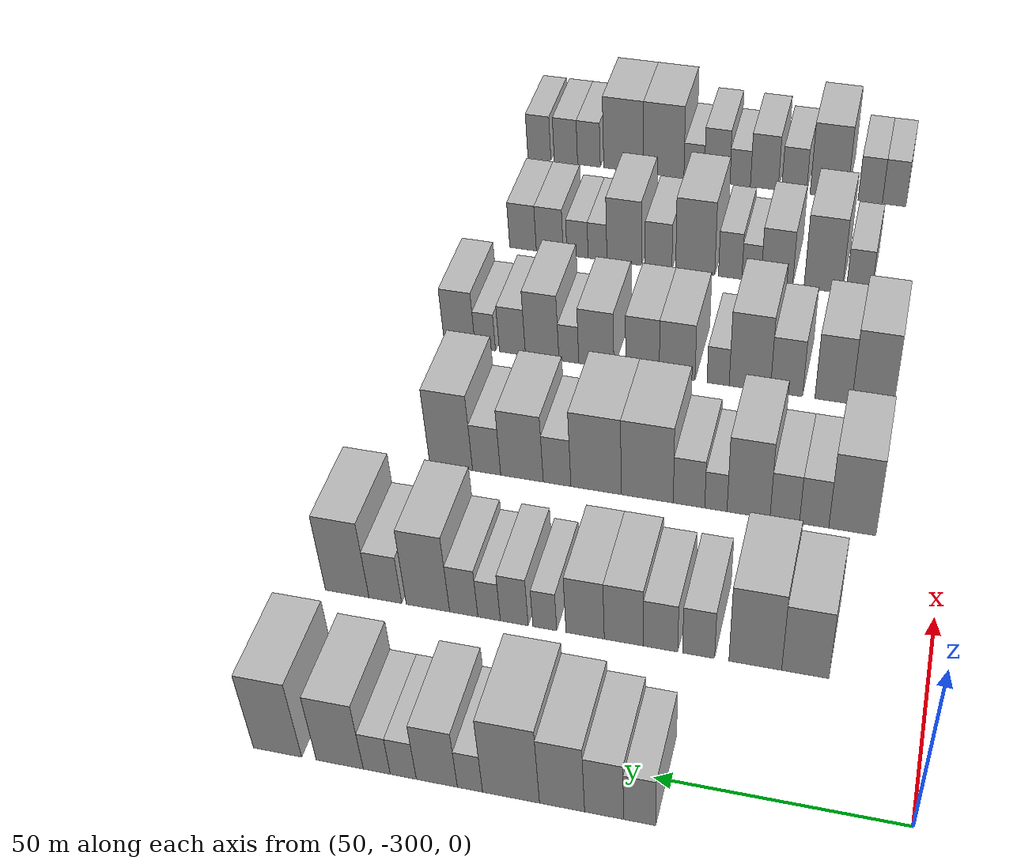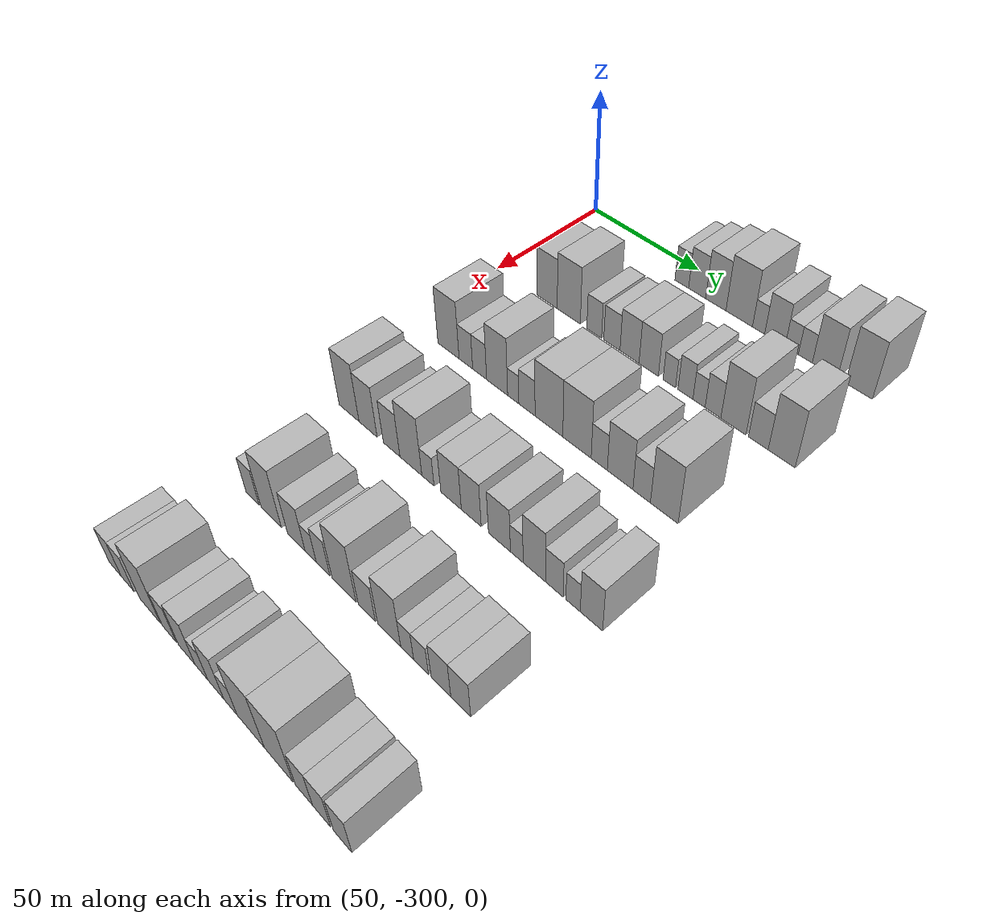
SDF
<sdf version="1.6">
 <world name="default">
  <model name="building_37">
   <static>1</static>
   <pose>50.0000 -249.3242 0 0.000000 0.000000 0.000000</pose>
   <link name="link">
    <pose>0 0 7.50 0 0 0</pose>
    <collision name="collision"><geometry><box><size>20.0000 6.2059 15.0000</size></box></geometry></collision>
    <visual name="visual">
     <cast_shadows>0</cast_shadows>
     <geometry><box><size>20.0000 6.2059 15.0000</size></box></geometry>
     <material>
      <script>
       <uri>model://HANNAS_wall/materials/scripts</uri>
       <uri>model://HANNAS_wall/materials/textures</uri>
       <name>vrc/HANNAS_wall</name>
      </script>
     </material>
    </visual>
   </link>
  </model>
  <model name="building_38">
   <static>1</static>
   <pose>50.0000 -242.4254 0 0.000000 0.000000 0.000000</pose>
   <link name="link">
    <pose>0 0 9.00 0 0 0</pose>
    <collision name="collision"><geometry><box><size>20.0000 7.5917 18.0000</size></box></geometry></collision>
    <visual name="visual">
     <cast_shadows>0</cast_shadows>
     <geometry><box><size>20.0000 7.5917 18.0000</size></box></geometry>
     <material>
      <script>
       <uri>model://HANNAS_wall/materials/scripts</uri>
       <uri>model://HANNAS_wall/materials/textures</uri>
       <name>vrc/HANNAS_wall</name>
      </script>
     </material>
    </visual>
   </link>
  </model>
  <model name="building_39">
   <static>1</static>
   <pose>50.0000 -234.2030 0 0.000000 0.000000 0.000000</pose>
   <link name="link">
    <pose>0 0 10.50 0 0 0</pose>
    <collision name="collision"><geometry><box><size>20.0000 8.8531 21.0000</size></box></geometry></collision>
    <visual name="visual">
     <cast_shadows>0</cast_shadows>
     <geometry><box><size>20.0000 8.8531 21.0000</size></box></geometry>
     <material>
      <script>
       <uri>model://HANNAS_wall/materials/scripts</uri>
       <uri>model://HANNAS_wall/materials/textures</uri>
       <name>vrc/HANNAS_wall</name>
      </script>
     </material>
    </visual>
   </link>
  </model>
  <model name="building_40">
   <static>1</static>
   <pose>50.0000 -224.1405 0 0.000000 0.000000 0.000000</pose>
   <link name="link">
    <pose>0 0 12.00 0 0 0</pose>
    <collision name="collision"><geometry><box><size>20.0000 11.2719 24.0000</size></box></geometry></collision>
    <visual name="visual">
     <cast_shadows>0</cast_shadows>
     <geometry><box><size>20.0000 11.2719 24.0000</size></box></geometry>
     <material>
      <script>
       <uri>model://HANNAS_wall/materials/scripts</uri>
       <uri>model://HANNAS_wall/materials/textures</uri>
       <name>vrc/HANNAS_wall</name>
      </script>
     </material>
    </visual>
   </link>
  </model>
  <model name="building_41">
   <static>1</static>
   <pose>50.0000 -215.9789 0 0.000000 0.000000 0.000000</pose>
   <link name="link">
    <pose>0 0 6.00 0 0 0</pose>
    <collision name="collision"><geometry><box><size>20.0000 5.0512 12.0000</size></box></geometry></collision>
    <visual name="visual">
     <cast_shadows>0</cast_shadows>
     <geometry><box><size>20.0000 5.0512 12.0000</size></box></geometry>
     <material>
      <script>
       <uri>model://HANNAS_wall/materials/scripts</uri>
       <uri>model://HANNAS_wall/materials/textures</uri>
       <name>vrc/HANNAS_wall</name>
      </script>
     </material>
    </visual>
   </link>
  </model>
  <model name="building_42">
   <static>1</static>
   <pose>50.0000 -209.3236 0 0.000000 0.000000 0.000000</pose>
   <link name="link">
    <pose>0 0 9.00 0 0 0</pose>
    <collision name="collision"><geometry><box><size>20.0000 8.2592 18.0000</size></box></geometry></collision>
    <visual name="visual">
     <cast_shadows>0</cast_shadows>
     <geometry><box><size>20.0000 8.2592 18.0000</size></box></geometry>
     <material>
      <script>
       <uri>model://HANNAS_wall/materials/scripts</uri>
       <uri>model://HANNAS_wall/materials/textures</uri>
       <name>vrc/HANNAS_wall</name>
      </script>
     </material>
    </visual>
   </link>
  </model>
  <model name="building_43">
   <static>1</static>
   <pose>50.0000 -202.5598 0 0.000000 0.000000 0.000000</pose>
   <link name="link">
    <pose>0 0 6.00 0 0 0</pose>
    <collision name="collision"><geometry><box><size>20.0000 5.2686 12.0000</size></box></geometry></collision>
    <visual name="visual">
     <cast_shadows>0</cast_shadows>
     <geometry><box><size>20.0000 5.2686 12.0000</size></box></geometry>
     <material>
      <script>
       <uri>model://HANNAS_wall/materials/scripts</uri>
       <uri>model://HANNAS_wall/materials/textures</uri>
       <name>vrc/HANNAS_wall</name>
      </script>
     </material>
    </visual>
   </link>
  </model>
  <model name="building_44">
   <static>1</static>
   <pose>50.0000 -197.1776 0 0.000000 0.000000 0.000000</pose>
   <link name="link">
    <pose>0 0 6.00 0 0 0</pose>
    <collision name="collision"><geometry><box><size>20.0000 5.4957 12.0000</size></box></geometry></collision>
    <visual name="visual">
     <cast_shadows>0</cast_shadows>
     <geometry><box><size>20.0000 5.4957 12.0000</size></box></geometry>
     <material>
      <script>
       <uri>model://HANNAS_wall/materials/scripts</uri>
       <uri>model://HANNAS_wall/materials/textures</uri>
       <name>vrc/HANNAS_wall</name>
      </script>
     </material>
    </visual>
   </link>
  </model>
  <model name="building_45">
   <static>1</static>
   <pose>50.0000 -189.6013 0 0.000000 0.000000 0.000000</pose>
   <link name="link">
    <pose>0 0 10.50 0 0 0</pose>
    <collision name="collision"><geometry><box><size>20.0000 9.6570 21.0000</size></box></geometry></collision>
    <visual name="visual">
     <cast_shadows>0</cast_shadows>
     <geometry><box><size>20.0000 9.6570 21.0000</size></box></geometry>
     <material>
      <script>
       <uri>model://HANNAS_wall/materials/scripts</uri>
       <uri>model://HANNAS_wall/materials/textures</uri>
       <name>vrc/HANNAS_wall</name>
      </script>
     </material>
    </visual>
   </link>
  </model>
  <model name="building_46">
   <static>1</static>
   <pose>50.0000 -176.7682 0 0.000000 0.000000 0.000000</pose>
   <link name="link">
    <pose>0 0 12.00 0 0 0</pose>
    <collision name="collision"><geometry><box><size>20.0000 10.0092 24.0000</size></box></geometry></collision>
    <visual name="visual">
     <cast_shadows>0</cast_shadows>
     <geometry><box><size>20.0000 10.0092 24.0000</size></box></geometry>
     <material>
      <script>
       <uri>model://HANNAS_wall/materials/scripts</uri>
       <uri>model://HANNAS_wall/materials/textures</uri>
       <name>vrc/HANNAS_wall</name>
      </script>
     </material>
    </visual>
   </link>
  </model>
  <model name="building_166">
   <static>1</static>
   <pose>90.0000 -275.2436 0 0.000000 0.000000 0.000000</pose>
   <link name="link">
    <pose>0 0 10.50 0 0 0</pose>
    <collision name="collision"><geometry><box><size>20.0000 9.7137 21.0000</size></box></geometry></collision>
    <visual name="visual">
     <cast_shadows>0</cast_shadows>
     <geometry><box><size>20.0000 9.7137 21.0000</size></box></geometry>
     <material>
      <script>
       <uri>model://HANNAS_wall/materials/scripts</uri>
       <uri>model://HANNAS_wall/materials/textures</uri>
       <name>vrc/HANNAS_wall</name>
      </script>
     </material>
    </visual>
   </link>
  </model>
  <model name="building_167">
   <static>1</static>
   <pose>90.0000 -264.9118 0 0.000000 0.000000 0.000000</pose>
   <link name="link">
    <pose>0 0 12.00 0 0 0</pose>
    <collision name="collision"><geometry><box><size>20.0000 10.9500 24.0000</size></box></geometry></collision>
    <visual name="visual">
     <cast_shadows>0</cast_shadows>
     <geometry><box><size>20.0000 10.9500 24.0000</size></box></geometry>
     <material>
      <script>
       <uri>model://HANNAS_wall/materials/scripts</uri>
       <uri>model://HANNAS_wall/materials/textures</uri>
       <name>vrc/HANNAS_wall</name>
      </script>
     </material>
    </visual>
   </link>
  </model>
  <model name="building_168">
   <static>1</static>
   <pose>90.0000 -253.0680 0 0.000000 0.000000 0.000000</pose>
   <link name="link">
    <pose>0 0 7.50 0 0 0</pose>
    <collision name="collision"><geometry><box><size>20.0000 6.7375 15.0000</size></box></geometry></collision>
    <visual name="visual">
     <cast_shadows>0</cast_shadows>
     <geometry><box><size>20.0000 6.7375 15.0000</size></box></geometry>
     <material>
      <script>
       <uri>model://HANNAS_wall/materials/scripts</uri>
       <uri>model://HANNAS_wall/materials/textures</uri>
       <name>vrc/HANNAS_wall</name>
      </script>
     </material>
    </visual>
   </link>
  </model>
  <model name="building_169">
   <static>1</static>
   <pose>90.0000 -245.0744 0 0.000000 0.000000 0.000000</pose>
   <link name="link">
    <pose>0 0 7.50 0 0 0</pose>
    <collision name="collision"><geometry><box><size>20.0000 7.2498 15.0000</size></box></geometry></collision>
    <visual name="visual">
     <cast_shadows>0</cast_shadows>
     <geometry><box><size>20.0000 7.2498 15.0000</size></box></geometry>
     <material>
      <script>
       <uri>model://HANNAS_wall/materials/scripts</uri>
       <uri>model://HANNAS_wall/materials/textures</uri>
       <name>vrc/HANNAS_wall</name>
      </script>
     </material>
    </visual>
   </link>
  </model>
  <model name="building_170">
   <static>1</static>
   <pose>90.0000 -237.2805 0 0.000000 0.000000 0.000000</pose>
   <link name="link">
    <pose>0 0 9.00 0 0 0</pose>
    <collision name="collision"><geometry><box><size>20.0000 8.3379 18.0000</size></box></geometry></collision>
    <visual name="visual">
     <cast_shadows>0</cast_shadows>
     <geometry><box><size>20.0000 8.3379 18.0000</size></box></geometry>
     <material>
      <script>
       <uri>model://HANNAS_wall/materials/scripts</uri>
       <uri>model://HANNAS_wall/materials/textures</uri>
       <name>vrc/HANNAS_wall</name>
      </script>
     </material>
    </visual>
   </link>
  </model>
  <model name="building_171">
   <static>1</static>
   <pose>90.0000 -228.9978 0 0.000000 0.000000 0.000000</pose>
   <link name="link">
    <pose>0 0 9.00 0 0 0</pose>
    <collision name="collision"><geometry><box><size>20.0000 8.2273 18.0000</size></box></geometry></collision>
    <visual name="visual">
     <cast_shadows>0</cast_shadows>
     <geometry><box><size>20.0000 8.2273 18.0000</size></box></geometry>
     <material>
      <script>
       <uri>model://HANNAS_wall/materials/scripts</uri>
       <uri>model://HANNAS_wall/materials/textures</uri>
       <name>vrc/HANNAS_wall</name>
      </script>
     </material>
    </visual>
   </link>
  </model>
  <model name="building_172">
   <static>1</static>
   <pose>90.0000 -220.3013 0 0.000000 0.000000 0.000000</pose>
   <link name="link">
    <pose>0 0 6.00 0 0 0</pose>
    <collision name="collision"><geometry><box><size>20.0000 5.1658 12.0000</size></box></geometry></collision>
    <visual name="visual">
     <cast_shadows>0</cast_shadows>
     <geometry><box><size>20.0000 5.1658 12.0000</size></box></geometry>
     <material>
      <script>
       <uri>model://HANNAS_wall/materials/scripts</uri>
       <uri>model://HANNAS_wall/materials/textures</uri>
       <name>vrc/HANNAS_wall</name>
      </script>
     </material>
    </visual>
   </link>
  </model>
  <model name="building_173">
   <static>1</static>
   <pose>90.0000 -213.6722 0 0.000000 0.000000 0.000000</pose>
   <link name="link">
    <pose>0 0 7.50 0 0 0</pose>
    <collision name="collision"><geometry><box><size>20.0000 6.0923 15.0000</size></box></geometry></collision>
    <visual name="visual">
     <cast_shadows>0</cast_shadows>
     <geometry><box><size>20.0000 6.0923 15.0000</size></box></geometry>
     <material>
      <script>
       <uri>model://HANNAS_wall/materials/scripts</uri>
       <uri>model://HANNAS_wall/materials/textures</uri>
       <name>vrc/HANNAS_wall</name>
      </script>
     </material>
    </visual>
   </link>
  </model>
  <model name="building_174">
   <static>1</static>
   <pose>90.0000 -208.1745 0 0.000000 0.000000 0.000000</pose>
   <link name="link">
    <pose>0 0 6.00 0 0 0</pose>
    <collision name="collision"><geometry><box><size>20.0000 4.9032 12.0000</size></box></geometry></collision>
    <visual name="visual">
     <cast_shadows>0</cast_shadows>
     <geometry><box><size>20.0000 4.9032 12.0000</size></box></geometry>
     <material>
      <script>
       <uri>model://HANNAS_wall/materials/scripts</uri>
       <uri>model://HANNAS_wall/materials/textures</uri>
       <name>vrc/HANNAS_wall</name>
      </script>
     </material>
    </visual>
   </link>
  </model>
  <model name="building_175">
   <static>1</static>
   <pose>90.0000 -202.6202 0 0.000000 0.000000 0.000000</pose>
   <link name="link">
    <pose>0 0 7.50 0 0 0</pose>
    <collision name="collision"><geometry><box><size>20.0000 6.2054 15.0000</size></box></geometry></collision>
    <visual name="visual">
     <cast_shadows>0</cast_shadows>
     <geometry><box><size>20.0000 6.2054 15.0000</size></box></geometry>
     <material>
      <script>
       <uri>model://HANNAS_wall/materials/scripts</uri>
       <uri>model://HANNAS_wall/materials/textures</uri>
       <name>vrc/HANNAS_wall</name>
      </script>
     </material>
    </visual>
   </link>
  </model>
  <model name="building_176">
   <static>1</static>
   <pose>90.0000 -194.6989 0 0.000000 0.000000 0.000000</pose>
   <link name="link">
    <pose>0 0 12.00 0 0 0</pose>
    <collision name="collision"><geometry><box><size>20.0000 9.6372 24.0000</size></box></geometry></collision>
    <visual name="visual">
     <cast_shadows>0</cast_shadows>
     <geometry><box><size>20.0000 9.6372 24.0000</size></box></geometry>
     <material>
      <script>
       <uri>model://HANNAS_wall/materials/scripts</uri>
       <uri>model://HANNAS_wall/materials/textures</uri>
       <name>vrc/HANNAS_wall</name>
      </script>
     </material>
    </visual>
   </link>
  </model>
  <model name="building_177">
   <static>1</static>
   <pose>90.0000 -185.2163 0 0.000000 0.000000 0.000000</pose>
   <link name="link">
    <pose>0 0 7.50 0 0 0</pose>
    <collision name="collision"><geometry><box><size>20.0000 7.3279 15.0000</size></box></geometry></collision>
    <visual name="visual">
     <cast_shadows>0</cast_shadows>
     <geometry><box><size>20.0000 7.3279 15.0000</size></box></geometry>
     <material>
      <script>
       <uri>model://HANNAS_wall/materials/scripts</uri>
       <uri>model://HANNAS_wall/materials/textures</uri>
       <name>vrc/HANNAS_wall</name>
      </script>
     </material>
    </visual>
   </link>
  </model>
  <model name="building_178">
   <static>1</static>
   <pose>90.0000 -176.6533 0 0.000000 0.000000 0.000000</pose>
   <link name="link">
    <pose>0 0 12.00 0 0 0</pose>
    <collision name="collision"><geometry><box><size>20.0000 9.7980 24.0000</size></box></geometry></collision>
    <visual name="visual">
     <cast_shadows>0</cast_shadows>
     <geometry><box><size>20.0000 9.7980 24.0000</size></box></geometry>
     <material>
      <script>
       <uri>model://HANNAS_wall/materials/scripts</uri>
       <uri>model://HANNAS_wall/materials/textures</uri>
       <name>vrc/HANNAS_wall</name>
      </script>
     </material>
    </visual>
   </link>
  </model>
  <model name="building_297">
   <static>1</static>
   <pose>130.0000 -280.2208 0 0.000000 0.000000 0.000000</pose>
   <link name="link">
    <pose>0 0 12.00 0 0 0</pose>
    <collision name="collision"><geometry><box><size>20.0000 10.4917 24.0000</size></box></geometry></collision>
    <visual name="visual">
     <cast_shadows>0</cast_shadows>
     <geometry><box><size>20.0000 10.4917 24.0000</size></box></geometry>
     <material>
      <script>
       <uri>model://HANNAS_wall/materials/scripts</uri>
       <uri>model://HANNAS_wall/materials/textures</uri>
       <name>vrc/HANNAS_wall</name>
      </script>
     </material>
    </visual>
   </link>
  </model>
  <model name="building_298">
   <static>1</static>
   <pose>130.0000 -271.6885 0 0.000000 0.000000 0.000000</pose>
   <link name="link">
    <pose>0 0 7.50 0 0 0</pose>
    <collision name="collision"><geometry><box><size>20.0000 6.5730 15.0000</size></box></geometry></collision>
    <visual name="visual">
     <cast_shadows>0</cast_shadows>
     <geometry><box><size>20.0000 6.5730 15.0000</size></box></geometry>
     <material>
      <script>
       <uri>model://HANNAS_wall/materials/scripts</uri>
       <uri>model://HANNAS_wall/materials/textures</uri>
       <name>vrc/HANNAS_wall</name>
      </script>
     </material>
    </visual>
   </link>
  </model>
  <model name="building_299">
   <static>1</static>
   <pose>130.0000 -265.0830 0 0.000000 0.000000 0.000000</pose>
   <link name="link">
    <pose>0 0 7.50 0 0 0</pose>
    <collision name="collision"><geometry><box><size>20.0000 6.6380 15.0000</size></box></geometry></collision>
    <visual name="visual">
     <cast_shadows>0</cast_shadows>
     <geometry><box><size>20.0000 6.6380 15.0000</size></box></geometry>
     <material>
      <script>
       <uri>model://HANNAS_wall/materials/scripts</uri>
       <uri>model://HANNAS_wall/materials/textures</uri>
       <name>vrc/HANNAS_wall</name>
      </script>
     </material>
    </visual>
   </link>
  </model>
  <model name="building_300">
   <static>1</static>
   <pose>130.0000 -256.8879 0 0.000000 0.000000 0.000000</pose>
   <link name="link">
    <pose>0 0 12.00 0 0 0</pose>
    <collision name="collision"><geometry><box><size>20.0000 9.7523 24.0000</size></box></geometry></collision>
    <visual name="visual">
     <cast_shadows>0</cast_shadows>
     <geometry><box><size>20.0000 9.7523 24.0000</size></box></geometry>
     <material>
      <script>
       <uri>model://HANNAS_wall/materials/scripts</uri>
       <uri>model://HANNAS_wall/materials/textures</uri>
       <name>vrc/HANNAS_wall</name>
      </script>
     </material>
    </visual>
   </link>
  </model>
  <model name="building_301">
   <static>1</static>
   <pose>130.0000 -249.4728 0 0.000000 0.000000 0.000000</pose>
   <link name="link">
    <pose>0 0 6.00 0 0 0</pose>
    <collision name="collision"><geometry><box><size>20.0000 5.0778 12.0000</size></box></geometry></collision>
    <visual name="visual">
     <cast_shadows>0</cast_shadows>
     <geometry><box><size>20.0000 5.0778 12.0000</size></box></geometry>
     <material>
      <script>
       <uri>model://HANNAS_wall/materials/scripts</uri>
       <uri>model://HANNAS_wall/materials/textures</uri>
       <name>vrc/HANNAS_wall</name>
      </script>
     </material>
    </visual>
   </link>
  </model>
  <model name="building_302">
   <static>1</static>
   <pose>130.0000 -243.3318 0 0.000000 0.000000 0.000000</pose>
   <link name="link">
    <pose>0 0 7.50 0 0 0</pose>
    <collision name="collision"><geometry><box><size>20.0000 7.2042 15.0000</size></box></geometry></collision>
    <visual name="visual">
     <cast_shadows>0</cast_shadows>
     <geometry><box><size>20.0000 7.2042 15.0000</size></box></geometry>
     <material>
      <script>
       <uri>model://HANNAS_wall/materials/scripts</uri>
       <uri>model://HANNAS_wall/materials/textures</uri>
       <name>vrc/HANNAS_wall</name>
      </script>
     </material>
    </visual>
   </link>
  </model>
  <model name="building_303">
   <static>1</static>
   <pose>130.0000 -233.7345 0 0.000000 0.000000 0.000000</pose>
   <link name="link">
    <pose>0 0 12.00 0 0 0</pose>
    <collision name="collision"><geometry><box><size>20.0000 11.9905 24.0000</size></box></geometry></collision>
    <visual name="visual">
     <cast_shadows>0</cast_shadows>
     <geometry><box><size>20.0000 11.9905 24.0000</size></box></geometry>
     <material>
      <script>
       <uri>model://HANNAS_wall/materials/scripts</uri>
       <uri>model://HANNAS_wall/materials/textures</uri>
       <name>vrc/HANNAS_wall</name>
      </script>
     </material>
    </visual>
   </link>
  </model>
  <model name="building_304">
   <static>1</static>
   <pose>130.0000 -221.8408 0 0.000000 0.000000 0.000000</pose>
   <link name="link">
    <pose>0 0 12.00 0 0 0</pose>
    <collision name="collision"><geometry><box><size>20.0000 11.7968 24.0000</size></box></geometry></collision>
    <visual name="visual">
     <cast_shadows>0</cast_shadows>
     <geometry><box><size>20.0000 11.7968 24.0000</size></box></geometry>
     <material>
      <script>
       <uri>model://HANNAS_wall/materials/scripts</uri>
       <uri>model://HANNAS_wall/materials/textures</uri>
       <name>vrc/HANNAS_wall</name>
      </script>
     </material>
    </visual>
   </link>
  </model>
  <model name="building_305">
   <static>1</static>
   <pose>130.0000 -212.6809 0 0.000000 0.000000 0.000000</pose>
   <link name="link">
    <pose>0 0 7.50 0 0 0</pose>
    <collision name="collision"><geometry><box><size>20.0000 6.5230 15.0000</size></box></geometry></collision>
    <visual name="visual">
     <cast_shadows>0</cast_shadows>
     <geometry><box><size>20.0000 6.5230 15.0000</size></box></geometry>
     <material>
      <script>
       <uri>model://HANNAS_wall/materials/scripts</uri>
       <uri>model://HANNAS_wall/materials/textures</uri>
       <name>vrc/HANNAS_wall</name>
      </script>
     </material>
    </visual>
   </link>
  </model>
  <model name="building_306">
   <static>1</static>
   <pose>130.0000 -204.3752 0 0.000000 0.000000 0.000000</pose>
   <link name="link">
    <pose>0 0 10.50 0 0 0</pose>
    <collision name="collision"><geometry><box><size>20.0000 10.0885 21.0000</size></box></geometry></collision>
    <visual name="visual">
     <cast_shadows>0</cast_shadows>
     <geometry><box><size>20.0000 10.0885 21.0000</size></box></geometry>
     <material>
      <script>
       <uri>model://HANNAS_wall/materials/scripts</uri>
       <uri>model://HANNAS_wall/materials/textures</uri>
       <name>vrc/HANNAS_wall</name>
      </script>
     </material>
    </visual>
   </link>
  </model>
  <model name="building_307">
   <static>1</static>
   <pose>130.0000 -195.9762 0 0.000000 0.000000 0.000000</pose>
   <link name="link">
    <pose>0 0 7.50 0 0 0</pose>
    <collision name="collision"><geometry><box><size>20.0000 6.7095 15.0000</size></box></geometry></collision>
    <visual name="visual">
     <cast_shadows>0</cast_shadows>
     <geometry><box><size>20.0000 6.7095 15.0000</size></box></geometry>
     <material>
      <script>
       <uri>model://HANNAS_wall/materials/scripts</uri>
       <uri>model://HANNAS_wall/materials/textures</uri>
       <name>vrc/HANNAS_wall</name>
      </script>
     </material>
    </visual>
   </link>
  </model>
  <model name="building_308">
   <static>1</static>
   <pose>130.0000 -187.4628 0 0.000000 0.000000 0.000000</pose>
   <link name="link">
    <pose>0 0 12.00 0 0 0</pose>
    <collision name="collision"><geometry><box><size>20.0000 10.3174 24.0000</size></box></geometry></collision>
    <visual name="visual">
     <cast_shadows>0</cast_shadows>
     <geometry><box><size>20.0000 10.3174 24.0000</size></box></geometry>
     <material>
      <script>
       <uri>model://HANNAS_wall/materials/scripts</uri>
       <uri>model://HANNAS_wall/materials/textures</uri>
       <name>vrc/HANNAS_wall</name>
      </script>
     </material>
    </visual>
   </link>
  </model>
  <model name="building_435">
   <static>1</static>
   <pose>170.0000 -280.3802 0 0.000000 0.000000 0.000000</pose>
   <link name="link">
    <pose>0 0 12.00 0 0 0</pose>
    <collision name="collision"><geometry><box><size>20.0000 9.9731 24.0000</size></box></geometry></collision>
    <visual name="visual">
     <cast_shadows>0</cast_shadows>
     <geometry><box><size>20.0000 9.9731 24.0000</size></box></geometry>
     <material>
      <script>
       <uri>model://HANNAS_wall/materials/scripts</uri>
       <uri>model://HANNAS_wall/materials/textures</uri>
       <name>vrc/HANNAS_wall</name>
      </script>
     </material>
    </visual>
   </link>
  </model>
  <model name="building_436">
   <static>1</static>
   <pose>170.0000 -270.9583 0 0.000000 0.000000 0.000000</pose>
   <link name="link">
    <pose>0 0 10.50 0 0 0</pose>
    <collision name="collision"><geometry><box><size>20.0000 8.8707 21.0000</size></box></geometry></collision>
    <visual name="visual">
     <cast_shadows>0</cast_shadows>
     <geometry><box><size>20.0000 8.8707 21.0000</size></box></geometry>
     <material>
      <script>
       <uri>model://HANNAS_wall/materials/scripts</uri>
       <uri>model://HANNAS_wall/materials/textures</uri>
       <name>vrc/HANNAS_wall</name>
      </script>
     </material>
    </visual>
   </link>
  </model>
  <model name="building_437">
   <static>1</static>
   <pose>170.0000 -259.5938 0 0.000000 0.000000 0.000000</pose>
   <link name="link">
    <pose>0 0 9.00 0 0 0</pose>
    <collision name="collision"><geometry><box><size>20.0000 7.8583 18.0000</size></box></geometry></collision>
    <visual name="visual">
     <cast_shadows>0</cast_shadows>
     <geometry><box><size>20.0000 7.8583 18.0000</size></box></geometry>
     <material>
      <script>
       <uri>model://HANNAS_wall/materials/scripts</uri>
       <uri>model://HANNAS_wall/materials/textures</uri>
       <name>vrc/HANNAS_wall</name>
      </script>
     </material>
    </visual>
   </link>
  </model>
  <model name="building_438">
   <static>1</static>
   <pose>170.0000 -250.6094 0 0.000000 0.000000 0.000000</pose>
   <link name="link">
    <pose>0 0 12.00 0 0 0</pose>
    <collision name="collision"><geometry><box><size>20.0000 10.1106 24.0000</size></box></geometry></collision>
    <visual name="visual">
     <cast_shadows>0</cast_shadows>
     <geometry><box><size>20.0000 10.1106 24.0000</size></box></geometry>
     <material>
      <script>
       <uri>model://HANNAS_wall/materials/scripts</uri>
       <uri>model://HANNAS_wall/materials/textures</uri>
       <name>vrc/HANNAS_wall</name>
      </script>
     </material>
    </visual>
   </link>
  </model>
  <model name="building_439">
   <static>1</static>
   <pose>170.0000 -242.8257 0 0.000000 0.000000 0.000000</pose>
   <link name="link">
    <pose>0 0 6.00 0 0 0</pose>
    <collision name="collision"><geometry><box><size>20.0000 5.4569 12.0000</size></box></geometry></collision>
    <visual name="visual">
     <cast_shadows>0</cast_shadows>
     <geometry><box><size>20.0000 5.4569 12.0000</size></box></geometry>
     <material>
      <script>
       <uri>model://HANNAS_wall/materials/scripts</uri>
       <uri>model://HANNAS_wall/materials/textures</uri>
       <name>vrc/HANNAS_wall</name>
      </script>
     </material>
    </visual>
   </link>
  </model>
  <model name="building_440">
   <static>1</static>
   <pose>170.0000 -232.6529 0 0.000000 0.000000 0.000000</pose>
   <link name="link">
    <pose>0 0 9.00 0 0 0</pose>
    <collision name="collision"><geometry><box><size>20.0000 8.8888 18.0000</size></box></geometry></collision>
    <visual name="visual">
     <cast_shadows>0</cast_shadows>
     <geometry><box><size>20.0000 8.8888 18.0000</size></box></geometry>
     <material>
      <script>
       <uri>model://HANNAS_wall/materials/scripts</uri>
       <uri>model://HANNAS_wall/materials/textures</uri>
       <name>vrc/HANNAS_wall</name>
      </script>
     </material>
    </visual>
   </link>
  </model>
  <model name="building_441">
   <static>1</static>
   <pose>170.0000 -224.0159 0 0.000000 0.000000 0.000000</pose>
   <link name="link">
    <pose>0 0 9.00 0 0 0</pose>
    <collision name="collision"><geometry><box><size>20.0000 8.3853 18.0000</size></box></geometry></collision>
    <visual name="visual">
     <cast_shadows>0</cast_shadows>
     <geometry><box><size>20.0000 8.3853 18.0000</size></box></geometry>
     <material>
      <script>
       <uri>model://HANNAS_wall/materials/scripts</uri>
       <uri>model://HANNAS_wall/materials/textures</uri>
       <name>vrc/HANNAS_wall</name>
      </script>
     </material>
    </visual>
   </link>
  </model>
  <model name="building_442">
   <static>1</static>
   <pose>170.0000 -212.3768 0 0.000000 0.000000 0.000000</pose>
   <link name="link">
    <pose>0 0 9.00 0 0 0</pose>
    <collision name="collision"><geometry><box><size>20.0000 8.8929 18.0000</size></box></geometry></collision>
    <visual name="visual">
     <cast_shadows>0</cast_shadows>
     <geometry><box><size>20.0000 8.8929 18.0000</size></box></geometry>
     <material>
      <script>
       <uri>model://HANNAS_wall/materials/scripts</uri>
       <uri>model://HANNAS_wall/materials/textures</uri>
       <name>vrc/HANNAS_wall</name>
      </script>
     </material>
    </visual>
   </link>
  </model>
  <model name="building_443">
   <static>1</static>
   <pose>170.0000 -205.4015 0 0.000000 0.000000 0.000000</pose>
   <link name="link">
    <pose>0 0 6.00 0 0 0</pose>
    <collision name="collision"><geometry><box><size>20.0000 5.0578 12.0000</size></box></geometry></collision>
    <visual name="visual">
     <cast_shadows>0</cast_shadows>
     <geometry><box><size>20.0000 5.0578 12.0000</size></box></geometry>
     <material>
      <script>
       <uri>model://HANNAS_wall/materials/scripts</uri>
       <uri>model://HANNAS_wall/materials/textures</uri>
       <name>vrc/HANNAS_wall</name>
      </script>
     </material>
    </visual>
   </link>
  </model>
  <model name="building_444">
   <static>1</static>
   <pose>170.0000 -198.5896 0 0.000000 0.000000 0.000000</pose>
   <link name="link">
    <pose>0 0 10.50 0 0 0</pose>
    <collision name="collision"><geometry><box><size>20.0000 8.5660 21.0000</size></box></geometry></collision>
    <visual name="visual">
     <cast_shadows>0</cast_shadows>
     <geometry><box><size>20.0000 8.5660 21.0000</size></box></geometry>
     <material>
      <script>
       <uri>model://HANNAS_wall/materials/scripts</uri>
       <uri>model://HANNAS_wall/materials/textures</uri>
       <name>vrc/HANNAS_wall</name>
      </script>
     </material>
    </visual>
   </link>
  </model>
  <model name="building_445">
   <static>1</static>
   <pose>170.0000 -190.9585 0 0.000000 0.000000 0.000000</pose>
   <link name="link">
    <pose>0 0 7.50 0 0 0</pose>
    <collision name="collision"><geometry><box><size>20.0000 6.6962 15.0000</size></box></geometry></collision>
    <visual name="visual">
     <cast_shadows>0</cast_shadows>
     <geometry><box><size>20.0000 6.6962 15.0000</size></box></geometry>
     <material>
      <script>
       <uri>model://HANNAS_wall/materials/scripts</uri>
       <uri>model://HANNAS_wall/materials/textures</uri>
       <name>vrc/HANNAS_wall</name>
      </script>
     </material>
    </visual>
   </link>
  </model>
  <model name="building_446">
   <static>1</static>
   <pose>170.0000 -183.9829 0 0.000000 0.000000 0.000000</pose>
   <link name="link">
    <pose>0 0 6.00 0 0 0</pose>
    <collision name="collision"><geometry><box><size>20.0000 5.2549 12.0000</size></box></geometry></collision>
    <visual name="visual">
     <cast_shadows>0</cast_shadows>
     <geometry><box><size>20.0000 5.2549 12.0000</size></box></geometry>
     <material>
      <script>
       <uri>model://HANNAS_wall/materials/scripts</uri>
       <uri>model://HANNAS_wall/materials/textures</uri>
       <name>vrc/HANNAS_wall</name>
      </script>
     </material>
    </visual>
   </link>
  </model>
  <model name="building_447">
   <static>1</static>
   <pose>170.0000 -177.3479 0 0.000000 0.000000 0.000000</pose>
   <link name="link">
    <pose>0 0 9.00 0 0 0</pose>
    <collision name="collision"><geometry><box><size>20.0000 8.0151 18.0000</size></box></geometry></collision>
    <visual name="visual">
     <cast_shadows>0</cast_shadows>
     <geometry><box><size>20.0000 8.0151 18.0000</size></box></geometry>
     <material>
      <script>
       <uri>model://HANNAS_wall/materials/scripts</uri>
       <uri>model://HANNAS_wall/materials/textures</uri>
       <name>vrc/HANNAS_wall</name>
      </script>
     </material>
    </visual>
   </link>
  </model>
  <model name="building_576">
   <static>1</static>
   <pose>210.0000 -272.5197 0 0.000000 0.000000 0.000000</pose>
   <link name="link">
    <pose>0 0 7.50 0 0 0</pose>
    <collision name="collision"><geometry><box><size>20.0000 6.5834 15.0000</size></box></geometry></collision>
    <visual name="visual">
     <cast_shadows>0</cast_shadows>
     <geometry><box><size>20.0000 6.5834 15.0000</size></box></geometry>
     <material>
      <script>
       <uri>model://HANNAS_wall/materials/scripts</uri>
       <uri>model://HANNAS_wall/materials/textures</uri>
       <name>vrc/HANNAS_wall</name>
      </script>
     </material>
    </visual>
   </link>
  </model>
  <model name="building_577">
   <static>1</static>
   <pose>210.0000 -263.2683 0 0.000000 0.000000 0.000000</pose>
   <link name="link">
    <pose>0 0 12.00 0 0 0</pose>
    <collision name="collision"><geometry><box><size>20.0000 9.9195 24.0000</size></box></geometry></collision>
    <visual name="visual">
     <cast_shadows>0</cast_shadows>
     <geometry><box><size>20.0000 9.9195 24.0000</size></box></geometry>
     <material>
      <script>
       <uri>model://HANNAS_wall/materials/scripts</uri>
       <uri>model://HANNAS_wall/materials/textures</uri>
       <name>vrc/HANNAS_wall</name>
      </script>
     </material>
    </visual>
   </link>
  </model>
  <model name="building_578">
   <static>1</static>
   <pose>210.0000 -251.1657 0 0.000000 0.000000 0.000000</pose>
   <link name="link">
    <pose>0 0 9.00 0 0 0</pose>
    <collision name="collision"><geometry><box><size>20.0000 8.2857 18.0000</size></box></geometry></collision>
    <visual name="visual">
     <cast_shadows>0</cast_shadows>
     <geometry><box><size>20.0000 8.2857 18.0000</size></box></geometry>
     <material>
      <script>
       <uri>model://HANNAS_wall/materials/scripts</uri>
       <uri>model://HANNAS_wall/materials/textures</uri>
       <name>vrc/HANNAS_wall</name>
      </script>
     </material>
    </visual>
   </link>
  </model>
  <model name="building_579">
   <static>1</static>
   <pose>210.0000 -244.4851 0 0.000000 0.000000 0.000000</pose>
   <link name="link">
    <pose>0 0 6.00 0 0 0</pose>
    <collision name="collision"><geometry><box><size>20.0000 5.0756 12.0000</size></box></geometry></collision>
    <visual name="visual">
     <cast_shadows>0</cast_shadows>
     <geometry><box><size>20.0000 5.0756 12.0000</size></box></geometry>
     <material>
      <script>
       <uri>model://HANNAS_wall/materials/scripts</uri>
       <uri>model://HANNAS_wall/materials/textures</uri>
       <name>vrc/HANNAS_wall</name>
      </script>
     </material>
    </visual>
   </link>
  </model>
  <model name="building_580">
   <static>1</static>
   <pose>210.0000 -238.8440 0 0.000000 0.000000 0.000000</pose>
   <link name="link">
    <pose>0 0 7.50 0 0 0</pose>
    <collision name="collision"><geometry><box><size>20.0000 6.2065 15.0000</size></box></geometry></collision>
    <visual name="visual">
     <cast_shadows>0</cast_shadows>
     <geometry><box><size>20.0000 6.2065 15.0000</size></box></geometry>
     <material>
      <script>
       <uri>model://HANNAS_wall/materials/scripts</uri>
       <uri>model://HANNAS_wall/materials/textures</uri>
       <name>vrc/HANNAS_wall</name>
      </script>
     </material>
    </visual>
   </link>
  </model>
  <model name="building_581">
   <static>1</static>
   <pose>210.0000 -229.5254 0 0.000000 0.000000 0.000000</pose>
   <link name="link">
    <pose>0 0 12.00 0 0 0</pose>
    <collision name="collision"><geometry><box><size>20.0000 10.4307 24.0000</size></box></geometry></collision>
    <visual name="visual">
     <cast_shadows>0</cast_shadows>
     <geometry><box><size>20.0000 10.4307 24.0000</size></box></geometry>
     <material>
      <script>
       <uri>model://HANNAS_wall/materials/scripts</uri>
       <uri>model://HANNAS_wall/materials/textures</uri>
       <name>vrc/HANNAS_wall</name>
      </script>
     </material>
    </visual>
   </link>
  </model>
  <model name="building_582">
   <static>1</static>
   <pose>210.0000 -219.7168 0 0.000000 0.000000 0.000000</pose>
   <link name="link">
    <pose>0 0 7.50 0 0 0</pose>
    <collision name="collision"><geometry><box><size>20.0000 7.1865 15.0000</size></box></geometry></collision>
    <visual name="visual">
     <cast_shadows>0</cast_shadows>
     <geometry><box><size>20.0000 7.1865 15.0000</size></box></geometry>
     <material>
      <script>
       <uri>model://HANNAS_wall/materials/scripts</uri>
       <uri>model://HANNAS_wall/materials/textures</uri>
       <name>vrc/HANNAS_wall</name>
      </script>
     </material>
    </visual>
   </link>
  </model>
  <model name="building_583">
   <static>1</static>
   <pose>210.0000 -210.4375 0 0.000000 0.000000 0.000000</pose>
   <link name="link">
    <pose>0 0 10.50 0 0 0</pose>
    <collision name="collision"><geometry><box><size>20.0000 9.3722 21.0000</size></box></geometry></collision>
    <visual name="visual">
     <cast_shadows>0</cast_shadows>
     <geometry><box><size>20.0000 9.3722 21.0000</size></box></geometry>
     <material>
      <script>
       <uri>model://HANNAS_wall/materials/scripts</uri>
       <uri>model://HANNAS_wall/materials/textures</uri>
       <name>vrc/HANNAS_wall</name>
      </script>
     </material>
    </visual>
   </link>
  </model>
  <model name="building_584">
   <static>1</static>
   <pose>210.0000 -203.1814 0 0.000000 0.000000 0.000000</pose>
   <link name="link">
    <pose>0 0 6.00 0 0 0</pose>
    <collision name="collision"><geometry><box><size>20.0000 5.1399 12.0000</size></box></geometry></collision>
    <visual name="visual">
     <cast_shadows>0</cast_shadows>
     <geometry><box><size>20.0000 5.1399 12.0000</size></box></geometry>
     <material>
      <script>
       <uri>model://HANNAS_wall/materials/scripts</uri>
       <uri>model://HANNAS_wall/materials/textures</uri>
       <name>vrc/HANNAS_wall</name>
      </script>
     </material>
    </visual>
   </link>
  </model>
  <model name="building_585">
   <static>1</static>
   <pose>210.0000 -197.7217 0 0.000000 0.000000 0.000000</pose>
   <link name="link">
    <pose>0 0 6.00 0 0 0</pose>
    <collision name="collision"><geometry><box><size>20.0000 5.7797 12.0000</size></box></geometry></collision>
    <visual name="visual">
     <cast_shadows>0</cast_shadows>
     <geometry><box><size>20.0000 5.7797 12.0000</size></box></geometry>
     <material>
      <script>
       <uri>model://HANNAS_wall/materials/scripts</uri>
       <uri>model://HANNAS_wall/materials/textures</uri>
       <name>vrc/HANNAS_wall</name>
      </script>
     </material>
    </visual>
   </link>
  </model>
  <model name="building_586">
   <static>1</static>
   <pose>210.0000 -190.1240 0 0.000000 0.000000 0.000000</pose>
   <link name="link">
    <pose>0 0 7.50 0 0 0</pose>
    <collision name="collision"><geometry><box><size>20.0000 7.4157 15.0000</size></box></geometry></collision>
    <visual name="visual">
     <cast_shadows>0</cast_shadows>
     <geometry><box><size>20.0000 7.4157 15.0000</size></box></geometry>
     <material>
      <script>
       <uri>model://HANNAS_wall/materials/scripts</uri>
       <uri>model://HANNAS_wall/materials/textures</uri>
       <name>vrc/HANNAS_wall</name>
      </script>
     </material>
    </visual>
   </link>
  </model>
  <model name="building_587">
   <static>1</static>
   <pose>210.0000 -182.7489 0 0.000000 0.000000 0.000000</pose>
   <link name="link">
    <pose>0 0 7.50 0 0 0</pose>
    <collision name="collision"><geometry><box><size>20.0000 7.3345 15.0000</size></box></geometry></collision>
    <visual name="visual">
     <cast_shadows>0</cast_shadows>
     <geometry><box><size>20.0000 7.3345 15.0000</size></box></geometry>
     <material>
      <script>
       <uri>model://HANNAS_wall/materials/scripts</uri>
       <uri>model://HANNAS_wall/materials/textures</uri>
       <name>vrc/HANNAS_wall</name>
      </script>
     </material>
    </visual>
   </link>
  </model>
  <model name="building_712">
   <static>1</static>
   <pose>250.0000 -277.7924 0 0.000000 0.000000 0.000000</pose>
   <link name="link">
    <pose>0 0 7.50 0 0 0</pose>
    <collision name="collision"><geometry><box><size>20.0000 6.5044 15.0000</size></box></geometry></collision>
    <visual name="visual">
     <cast_shadows>0</cast_shadows>
     <geometry><box><size>20.0000 6.5044 15.0000</size></box></geometry>
     <material>
      <script>
       <uri>model://HANNAS_wall/materials/scripts</uri>
       <uri>model://HANNAS_wall/materials/textures</uri>
       <name>vrc/HANNAS_wall</name>
      </script>
     </material>
    </visual>
   </link>
  </model>
  <model name="building_713">
   <static>1</static>
   <pose>250.0000 -271.1819 0 0.000000 0.000000 0.000000</pose>
   <link name="link">
    <pose>0 0 7.50 0 0 0</pose>
    <collision name="collision"><geometry><box><size>20.0000 6.7166 15.0000</size></box></geometry></collision>
    <visual name="visual">
     <cast_shadows>0</cast_shadows>
     <geometry><box><size>20.0000 6.7166 15.0000</size></box></geometry>
     <material>
      <script>
       <uri>model://HANNAS_wall/materials/scripts</uri>
       <uri>model://HANNAS_wall/materials/textures</uri>
       <name>vrc/HANNAS_wall</name>
      </script>
     </material>
    </visual>
   </link>
  </model>
  <model name="building_714">
   <static>1</static>
   <pose>250.0000 -259.6330 0 0.000000 0.000000 0.000000</pose>
   <link name="link">
    <pose>0 0 12.00 0 0 0</pose>
    <collision name="collision"><geometry><box><size>20.0000 10.3812 24.0000</size></box></geometry></collision>
    <visual name="visual">
     <cast_shadows>0</cast_shadows>
     <geometry><box><size>20.0000 10.3812 24.0000</size></box></geometry>
     <material>
      <script>
       <uri>model://HANNAS_wall/materials/scripts</uri>
       <uri>model://HANNAS_wall/materials/textures</uri>
       <name>vrc/HANNAS_wall</name>
      </script>
     </material>
    </visual>
   </link>
  </model>
  <model name="building_715">
   <static>1</static>
   <pose>250.0000 -249.9639 0 0.000000 0.000000 0.000000</pose>
   <link name="link">
    <pose>0 0 7.50 0 0 0</pose>
    <collision name="collision"><geometry><box><size>20.0000 6.9570 15.0000</size></box></geometry></collision>
    <visual name="visual">
     <cast_shadows>0</cast_shadows>
     <geometry><box><size>20.0000 6.9570 15.0000</size></box></geometry>
     <material>
      <script>
       <uri>model://HANNAS_wall/materials/scripts</uri>
       <uri>model://HANNAS_wall/materials/textures</uri>
       <name>vrc/HANNAS_wall</name>
      </script>
     </material>
    </visual>
   </link>
  </model>
  <model name="building_716">
   <static>1</static>
   <pose>250.0000 -241.5611 0 0.000000 0.000000 0.000000</pose>
   <link name="link">
    <pose>0 0 9.00 0 0 0</pose>
    <collision name="collision"><geometry><box><size>20.0000 7.8486 18.0000</size></box></geometry></collision>
    <visual name="visual">
     <cast_shadows>0</cast_shadows>
     <geometry><box><size>20.0000 7.8486 18.0000</size></box></geometry>
     <material>
      <script>
       <uri>model://HANNAS_wall/materials/scripts</uri>
       <uri>model://HANNAS_wall/materials/textures</uri>
       <name>vrc/HANNAS_wall</name>
      </script>
     </material>
    </visual>
   </link>
  </model>
  <model name="building_717">
   <static>1</static>
   <pose>250.0000 -234.6889 0 0.000000 0.000000 0.000000</pose>
   <link name="link">
    <pose>0 0 6.00 0 0 0</pose>
    <collision name="collision"><geometry><box><size>20.0000 5.8959 12.0000</size></box></geometry></collision>
    <visual name="visual">
     <cast_shadows>0</cast_shadows>
     <geometry><box><size>20.0000 5.8959 12.0000</size></box></geometry>
     <material>
      <script>
       <uri>model://HANNAS_wall/materials/scripts</uri>
       <uri>model://HANNAS_wall/materials/textures</uri>
       <name>vrc/HANNAS_wall</name>
      </script>
     </material>
    </visual>
   </link>
  </model>
  <model name="building_718">
   <static>1</static>
   <pose>250.0000 -228.1377 0 0.000000 0.000000 0.000000</pose>
   <link name="link">
    <pose>0 0 9.00 0 0 0</pose>
    <collision name="collision"><geometry><box><size>20.0000 7.2065 18.0000</size></box></geometry></collision>
    <visual name="visual">
     <cast_shadows>0</cast_shadows>
     <geometry><box><size>20.0000 7.2065 18.0000</size></box></geometry>
     <material>
      <script>
       <uri>model://HANNAS_wall/materials/scripts</uri>
       <uri>model://HANNAS_wall/materials/textures</uri>
       <name>vrc/HANNAS_wall</name>
      </script>
     </material>
    </visual>
   </link>
  </model>
  <model name="building_719">
   <static>1</static>
   <pose>250.0000 -221.6129 0 0.000000 0.000000 0.000000</pose>
   <link name="link">
    <pose>0 0 6.00 0 0 0</pose>
    <collision name="collision"><geometry><box><size>20.0000 5.8431 12.0000</size></box></geometry></collision>
    <visual name="visual">
     <cast_shadows>0</cast_shadows>
     <geometry><box><size>20.0000 5.8431 12.0000</size></box></geometry>
     <material>
      <script>
       <uri>model://HANNAS_wall/materials/scripts</uri>
       <uri>model://HANNAS_wall/materials/textures</uri>
       <name>vrc/HANNAS_wall</name>
      </script>
     </material>
    </visual>
   </link>
  </model>
  <model name="building_720">
   <static>1</static>
   <pose>250.0000 -212.8741 0 0.000000 0.000000 0.000000</pose>
   <link name="link">
    <pose>0 0 12.00 0 0 0</pose>
    <collision name="collision"><geometry><box><size>20.0000 11.6346 24.0000</size></box></geometry></collision>
    <visual name="visual">
     <cast_shadows>0</cast_shadows>
     <geometry><box><size>20.0000 11.6346 24.0000</size></box></geometry>
     <material>
      <script>
       <uri>model://HANNAS_wall/materials/scripts</uri>
       <uri>model://HANNAS_wall/materials/textures</uri>
       <name>vrc/HANNAS_wall</name>
      </script>
     </material>
    </visual>
   </link>
  </model>
  <model name="building_721">
   <static>1</static>
   <pose>250.0000 -201.2835 0 0.000000 0.000000 0.000000</pose>
   <link name="link">
    <pose>0 0 12.00 0 0 0</pose>
    <collision name="collision"><geometry><box><size>20.0000 11.5465 24.0000</size></box></geometry></collision>
    <visual name="visual">
     <cast_shadows>0</cast_shadows>
     <geometry><box><size>20.0000 11.5465 24.0000</size></box></geometry>
     <material>
      <script>
       <uri>model://HANNAS_wall/materials/scripts</uri>
       <uri>model://HANNAS_wall/materials/textures</uri>
       <name>vrc/HANNAS_wall</name>
      </script>
     </material>
    </visual>
   </link>
  </model>
  <model name="building_722">
   <static>1</static>
   <pose>250.0000 -191.1839 0 0.000000 0.000000 0.000000</pose>
   <link name="link">
    <pose>0 0 7.50 0 0 0</pose>
    <collision name="collision"><geometry><box><size>20.0000 6.6527 15.0000</size></box></geometry></collision>
    <visual name="visual">
     <cast_shadows>0</cast_shadows>
     <geometry><box><size>20.0000 6.6527 15.0000</size></box></geometry>
     <material>
      <script>
       <uri>model://HANNAS_wall/materials/scripts</uri>
       <uri>model://HANNAS_wall/materials/textures</uri>
       <name>vrc/HANNAS_wall</name>
      </script>
     </material>
    </visual>
   </link>
  </model>
  <model name="building_723">
   <static>1</static>
   <pose>250.0000 -184.4363 0 0.000000 0.000000 0.000000</pose>
   <link name="link">
    <pose>0 0 7.50 0 0 0</pose>
    <collision name="collision"><geometry><box><size>20.0000 6.8426 15.0000</size></box></geometry></collision>
    <visual name="visual">
     <cast_shadows>0</cast_shadows>
     <geometry><box><size>20.0000 6.8426 15.0000</size></box></geometry>
     <material>
      <script>
       <uri>model://HANNAS_wall/materials/scripts</uri>
       <uri>model://HANNAS_wall/materials/textures</uri>
       <name>vrc/HANNAS_wall</name>
      </script>
     </material>
    </visual>
   </link>
  </model>
  <model name="building_724">
   <static>1</static>
   <pose>250.0000 -176.6288 0 0.000000 0.000000 0.000000</pose>
   <link name="link">
    <pose>0 0 7.50 0 0 0</pose>
    <collision name="collision"><geometry><box><size>20.0000 6.7724 15.0000</size></box></geometry></collision>
    <visual name="visual">
     <cast_shadows>0</cast_shadows>
     <geometry><box><size>20.0000 6.7724 15.0000</size></box></geometry>
     <material>
      <script>
       <uri>model://HANNAS_wall/materials/scripts</uri>
       <uri>model://HANNAS_wall/materials/textures</uri>
       <name>vrc/HANNAS_wall</name>
      </script>
     </material>
    </visual>
   </link>
  </model>
 </world>
</sdf>
